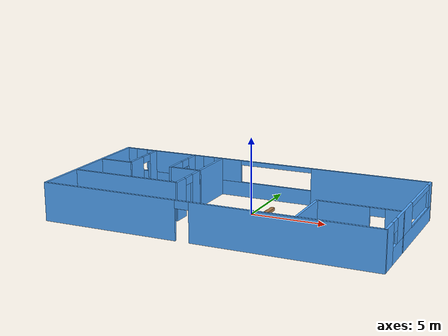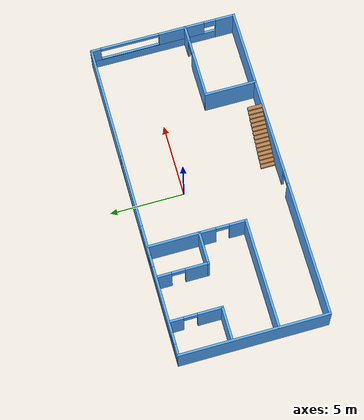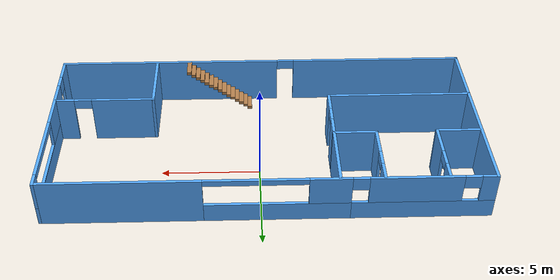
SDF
<?xml version='1.0'?>
<sdf version='1.6'>
  <model name='Building'>
    <pose frame=''>-0.217021 -1.5175 0 0 -0 0</pose>
    <link name='Stairs_0'>
      <visual name='Stairs_0_Visual_0'>
        <pose frame=''>0.664392 -4.38115 0.083333 0 -0 1.5708</pose>
        <geometry>
          <box>
            <size>1 0.233333 0.166667</size>
          </box>
        </geometry>
        <material>
          <script>
            <uri>file://media/materials/scripts/gazebo.material</uri>
            <name>Gazebo/Wood</name>
          </script>
          <ambient>1 1 1 1</ambient>
        </material>
        <meta>
          <layer>0</layer>
        </meta>
      </visual>
      <collision name='Stairs_0_Collision_0'>
        <geometry>
          <box>
            <size>1 0.233333 0.166667</size>
          </box>
        </geometry>
        <pose frame=''>0.664392 -4.38115 0.083333 0 -0 1.5708</pose>
      </collision>
      <visual name='Stairs_0_Visual_1'>
        <pose frame=''>0.897726 -4.38115 0.25 0 -0 1.5708</pose>
        <geometry>
          <box>
            <size>1 0.233333 0.166667</size>
          </box>
        </geometry>
        <material>
          <script>
            <uri>file://media/materials/scripts/gazebo.material</uri>
            <name>Gazebo/Wood</name>
          </script>
          <ambient>1 1 1 1</ambient>
        </material>
        <meta>
          <layer>0</layer>
        </meta>
      </visual>
      <collision name='Stairs_0_Collision_1'>
        <geometry>
          <box>
            <size>1 0.233333 0.166667</size>
          </box>
        </geometry>
        <pose frame=''>0.897726 -4.38115 0.25 0 -0 1.5708</pose>
      </collision>
      <visual name='Stairs_0_Visual_2'>
        <pose frame=''>1.13106 -4.38115 0.416667 0 -0 1.5708</pose>
        <geometry>
          <box>
            <size>1 0.233333 0.166667</size>
          </box>
        </geometry>
        <material>
          <script>
            <uri>file://media/materials/scripts/gazebo.material</uri>
            <name>Gazebo/Wood</name>
          </script>
          <ambient>1 1 1 1</ambient>
        </material>
        <meta>
          <layer>0</layer>
        </meta>
      </visual>
      <collision name='Stairs_0_Collision_2'>
        <geometry>
          <box>
            <size>1 0.233333 0.166667</size>
          </box>
        </geometry>
        <pose frame=''>1.13106 -4.38115 0.416667 0 -0 1.5708</pose>
      </collision>
      <visual name='Stairs_0_Visual_3'>
        <pose frame=''>1.36439 -4.38115 0.583333 0 -0 1.5708</pose>
        <geometry>
          <box>
            <size>1 0.233333 0.166667</size>
          </box>
        </geometry>
        <material>
          <script>
            <uri>file://media/materials/scripts/gazebo.material</uri>
            <name>Gazebo/Wood</name>
          </script>
          <ambient>1 1 1 1</ambient>
        </material>
        <meta>
          <layer>0</layer>
        </meta>
      </visual>
      <collision name='Stairs_0_Collision_3'>
        <geometry>
          <box>
            <size>1 0.233333 0.166667</size>
          </box>
        </geometry>
        <pose frame=''>1.36439 -4.38115 0.583333 0 -0 1.5708</pose>
      </collision>
      <visual name='Stairs_0_Visual_4'>
        <pose frame=''>1.59773 -4.38115 0.75 0 -0 1.5708</pose>
        <geometry>
          <box>
            <size>1 0.233333 0.166667</size>
          </box>
        </geometry>
        <material>
          <script>
            <uri>file://media/materials/scripts/gazebo.material</uri>
            <name>Gazebo/Wood</name>
          </script>
          <ambient>1 1 1 1</ambient>
        </material>
        <meta>
          <layer>0</layer>
        </meta>
      </visual>
      <collision name='Stairs_0_Collision_4'>
        <geometry>
          <box>
            <size>1 0.233333 0.166667</size>
          </box>
        </geometry>
        <pose frame=''>1.59773 -4.38115 0.75 0 -0 1.5708</pose>
      </collision>
      <visual name='Stairs_0_Visual_5'>
        <pose frame=''>1.83106 -4.38115 0.916667 0 -0 1.5708</pose>
        <geometry>
          <box>
            <size>1 0.233333 0.166667</size>
          </box>
        </geometry>
        <material>
          <script>
            <uri>file://media/materials/scripts/gazebo.material</uri>
            <name>Gazebo/Wood</name>
          </script>
          <ambient>1 1 1 1</ambient>
        </material>
        <meta>
          <layer>0</layer>
        </meta>
      </visual>
      <collision name='Stairs_0_Collision_5'>
        <geometry>
          <box>
            <size>1 0.233333 0.166667</size>
          </box>
        </geometry>
        <pose frame=''>1.83106 -4.38115 0.916667 0 -0 1.5708</pose>
      </collision>
      <visual name='Stairs_0_Visual_6'>
        <pose frame=''>2.06439 -4.38115 1.08333 0 -0 1.5708</pose>
        <geometry>
          <box>
            <size>1 0.233333 0.166667</size>
          </box>
        </geometry>
        <material>
          <script>
            <uri>file://media/materials/scripts/gazebo.material</uri>
            <name>Gazebo/Wood</name>
          </script>
          <ambient>1 1 1 1</ambient>
        </material>
        <meta>
          <layer>0</layer>
        </meta>
      </visual>
      <collision name='Stairs_0_Collision_6'>
        <geometry>
          <box>
            <size>1 0.233333 0.166667</size>
          </box>
        </geometry>
        <pose frame=''>2.06439 -4.38115 1.08333 0 -0 1.5708</pose>
      </collision>
      <visual name='Stairs_0_Visual_7'>
        <pose frame=''>2.29773 -4.38115 1.25 0 -0 1.5708</pose>
        <geometry>
          <box>
            <size>1 0.233333 0.166667</size>
          </box>
        </geometry>
        <material>
          <script>
            <uri>file://media/materials/scripts/gazebo.material</uri>
            <name>Gazebo/Wood</name>
          </script>
          <ambient>1 1 1 1</ambient>
        </material>
        <meta>
          <layer>0</layer>
        </meta>
      </visual>
      <collision name='Stairs_0_Collision_7'>
        <geometry>
          <box>
            <size>1 0.233333 0.166667</size>
          </box>
        </geometry>
        <pose frame=''>2.29773 -4.38115 1.25 0 -0 1.5708</pose>
      </collision>
      <visual name='Stairs_0_Visual_8'>
        <pose frame=''>2.53106 -4.38115 1.41667 0 -0 1.5708</pose>
        <geometry>
          <box>
            <size>1 0.233333 0.166667</size>
          </box>
        </geometry>
        <material>
          <script>
            <uri>file://media/materials/scripts/gazebo.material</uri>
            <name>Gazebo/Wood</name>
          </script>
          <ambient>1 1 1 1</ambient>
        </material>
        <meta>
          <layer>0</layer>
        </meta>
      </visual>
      <collision name='Stairs_0_Collision_8'>
        <geometry>
          <box>
            <size>1 0.233333 0.166667</size>
          </box>
        </geometry>
        <pose frame=''>2.53106 -4.38115 1.41667 0 -0 1.5708</pose>
      </collision>
      <visual name='Stairs_0_Visual_9'>
        <pose frame=''>2.76439 -4.38115 1.58333 0 -0 1.5708</pose>
        <geometry>
          <box>
            <size>1 0.233333 0.166667</size>
          </box>
        </geometry>
        <material>
          <script>
            <uri>file://media/materials/scripts/gazebo.material</uri>
            <name>Gazebo/Wood</name>
          </script>
          <ambient>1 1 1 1</ambient>
        </material>
        <meta>
          <layer>0</layer>
        </meta>
      </visual>
      <collision name='Stairs_0_Collision_9'>
        <geometry>
          <box>
            <size>1 0.233333 0.166667</size>
          </box>
        </geometry>
        <pose frame=''>2.76439 -4.38115 1.58333 0 -0 1.5708</pose>
      </collision>
      <visual name='Stairs_0_Visual_10'>
        <pose frame=''>2.99773 -4.38115 1.75 0 -0 1.5708</pose>
        <geometry>
          <box>
            <size>1 0.233333 0.166667</size>
          </box>
        </geometry>
        <material>
          <script>
            <uri>file://media/materials/scripts/gazebo.material</uri>
            <name>Gazebo/Wood</name>
          </script>
          <ambient>1 1 1 1</ambient>
        </material>
        <meta>
          <layer>0</layer>
        </meta>
      </visual>
      <collision name='Stairs_0_Collision_10'>
        <geometry>
          <box>
            <size>1 0.233333 0.166667</size>
          </box>
        </geometry>
        <pose frame=''>2.99773 -4.38115 1.75 0 -0 1.5708</pose>
      </collision>
      <visual name='Stairs_0_Visual_11'>
        <pose frame=''>3.23106 -4.38115 1.91667 0 -0 1.5708</pose>
        <geometry>
          <box>
            <size>1 0.233333 0.166667</size>
          </box>
        </geometry>
        <material>
          <script>
            <uri>file://media/materials/scripts/gazebo.material</uri>
            <name>Gazebo/Wood</name>
          </script>
          <ambient>1 1 1 1</ambient>
        </material>
        <meta>
          <layer>0</layer>
        </meta>
      </visual>
      <collision name='Stairs_0_Collision_11'>
        <geometry>
          <box>
            <size>1 0.233333 0.166667</size>
          </box>
        </geometry>
        <pose frame=''>3.23106 -4.38115 1.91667 0 -0 1.5708</pose>
      </collision>
      <visual name='Stairs_0_Visual_12'>
        <pose frame=''>3.46439 -4.38115 2.08333 0 -0 1.5708</pose>
        <geometry>
          <box>
            <size>1 0.233333 0.166667</size>
          </box>
        </geometry>
        <material>
          <script>
            <uri>file://media/materials/scripts/gazebo.material</uri>
            <name>Gazebo/Wood</name>
          </script>
          <ambient>1 1 1 1</ambient>
        </material>
        <meta>
          <layer>0</layer>
        </meta>
      </visual>
      <collision name='Stairs_0_Collision_12'>
        <geometry>
          <box>
            <size>1 0.233333 0.166667</size>
          </box>
        </geometry>
        <pose frame=''>3.46439 -4.38115 2.08333 0 -0 1.5708</pose>
      </collision>
      <visual name='Stairs_0_Visual_13'>
        <pose frame=''>3.69773 -4.38115 2.25 0 -0 1.5708</pose>
        <geometry>
          <box>
            <size>1 0.233333 0.166667</size>
          </box>
        </geometry>
        <material>
          <script>
            <uri>file://media/materials/scripts/gazebo.material</uri>
            <name>Gazebo/Wood</name>
          </script>
          <ambient>1 1 1 1</ambient>
        </material>
        <meta>
          <layer>0</layer>
        </meta>
      </visual>
      <collision name='Stairs_0_Collision_13'>
        <geometry>
          <box>
            <size>1 0.233333 0.166667</size>
          </box>
        </geometry>
        <pose frame=''>3.69773 -4.38115 2.25 0 -0 1.5708</pose>
      </collision>
      <visual name='Stairs_0_Visual_14'>
        <pose frame=''>3.93106 -4.38115 2.41667 0 -0 1.5708</pose>
        <geometry>
          <box>
            <size>1 0.233333 0.166667</size>
          </box>
        </geometry>
        <material>
          <script>
            <uri>file://media/materials/scripts/gazebo.material</uri>
            <name>Gazebo/Wood</name>
          </script>
          <ambient>1 1 1 1</ambient>
        </material>
        <meta>
          <layer>0</layer>
        </meta>
      </visual>
      <collision name='Stairs_0_Collision_14'>
        <geometry>
          <box>
            <size>1 0.233333 0.166667</size>
          </box>
        </geometry>
        <pose frame=''>3.93106 -4.38115 2.41667 0 -0 1.5708</pose>
      </collision>
    </link>
    <link name='Wall_10'>
      <pose frame=''>-3.45255 1.62717 0 0 -0 1.5708</pose>
      <visual name='Wall_10_Visual_0'>
        <pose frame=''>-2.71124 0 1.25 0 -0 0</pose>
        <geometry>
          <box>
            <size>1.17752 0.15 2.5</size>
          </box>
        </geometry>
        <material>
          <script>
            <uri>file://media/materials/scripts/gazebo.material</uri>
            <name>Gazebo/Grey</name>
          </script>
          <ambient>0.333333 0.666667 1 1</ambient>
        </material>
        <meta>
          <layer>0</layer>
        </meta>
      </visual>
      <collision name='Wall_10_Collision_0'>
        <geometry>
          <box>
            <size>1.17752 0.15 2.5</size>
          </box>
        </geometry>
        <pose frame=''>-2.71124 0 1.25 0 -0 0</pose>
      </collision>
      <visual name='Wall_10_Visual_1'>
        <pose frame=''>1.03876 0 1.25 0 -0 0</pose>
        <geometry>
          <box>
            <size>4.52248 0.15 2.5</size>
          </box>
        </geometry>
        <material>
          <script>
            <uri>file://media/materials/scripts/gazebo.material</uri>
            <name>Gazebo/Grey</name>
          </script>
          <ambient>0.333333 0.666667 1 1</ambient>
        </material>
        <meta>
          <layer>0</layer>
        </meta>
      </visual>
      <collision name='Wall_10_Collision_1'>
        <geometry>
          <box>
            <size>4.52248 0.15 2.5</size>
          </box>
        </geometry>
        <pose frame=''>1.03876 0 1.25 0 -0 0</pose>
      </collision>
      <visual name='Wall_10_Visual_2'>
        <pose frame=''>-1.67248 0 2.25 0 -0 0</pose>
        <geometry>
          <box>
            <size>0.9 0.15 0.5</size>
          </box>
        </geometry>
        <material>
          <script>
            <uri>file://media/materials/scripts/gazebo.material</uri>
            <name>Gazebo/Grey</name>
          </script>
          <ambient>0.333333 0.666667 1 1</ambient>
        </material>
        <meta>
          <layer>0</layer>
        </meta>
      </visual>
      <collision name='Wall_10_Collision_2'>
        <geometry>
          <box>
            <size>0.9 0.15 0.5</size>
          </box>
        </geometry>
        <pose frame=''>-1.67248 0 2.25 0 -0 0</pose>
      </collision>
    </link>
    <link name='Wall_12'>
      <pose frame=''>-8.58176 3.12092 0 0 0 -1.5708</pose>
      <visual name='Wall_12_Visual_0'>
        <pose frame=''>-1.2991 0 1.25 0 -0 0</pose>
        <geometry>
          <box>
            <size>0.90181 0.15 2.5</size>
          </box>
        </geometry>
        <material>
          <script>
            <uri>file://media/materials/scripts/gazebo.material</uri>
            <name>Gazebo/Grey</name>
          </script>
          <ambient>0.333333 0.666667 1 1</ambient>
        </material>
        <meta>
          <layer>0</layer>
        </meta>
      </visual>
      <collision name='Wall_12_Collision_0'>
        <geometry>
          <box>
            <size>0.90181 0.15 2.5</size>
          </box>
        </geometry>
        <pose frame=''>-1.2991 0 1.25 0 -0 0</pose>
      </collision>
      <visual name='Wall_12_Visual_1'>
        <pose frame=''>0.900905 0 1.25 0 -0 0</pose>
        <geometry>
          <box>
            <size>1.69819 0.15 2.5</size>
          </box>
        </geometry>
        <material>
          <script>
            <uri>file://media/materials/scripts/gazebo.material</uri>
            <name>Gazebo/Grey</name>
          </script>
          <ambient>0.333333 0.666667 1 1</ambient>
        </material>
        <meta>
          <layer>0</layer>
        </meta>
      </visual>
      <collision name='Wall_12_Collision_1'>
        <geometry>
          <box>
            <size>1.69819 0.15 2.5</size>
          </box>
        </geometry>
        <pose frame=''>0.900905 0 1.25 0 -0 0</pose>
      </collision>
      <visual name='Wall_12_Visual_2'>
        <pose frame=''>-0.39819 0 2.25 0 -0 0</pose>
        <geometry>
          <box>
            <size>0.9 0.15 0.5</size>
          </box>
        </geometry>
        <material>
          <script>
            <uri>file://media/materials/scripts/gazebo.material</uri>
            <name>Gazebo/Grey</name>
          </script>
          <ambient>0.333333 0.666667 1 1</ambient>
        </material>
        <meta>
          <layer>0</layer>
        </meta>
      </visual>
      <collision name='Wall_12_Collision_2'>
        <geometry>
          <box>
            <size>0.9 0.15 0.5</size>
          </box>
        </geometry>
        <pose frame=''>-0.39819 0 2.25 0 -0 0</pose>
      </collision>
    </link>
    <link name='Wall_13'>
      <collision name='Wall_13_Collision'>
        <geometry>
          <box>
            <size>2.25 0.15 2.5</size>
          </box>
        </geometry>
        <pose frame=''>0 0 1.25 0 -0 0</pose>
      </collision>
      <visual name='Wall_13_Visual'>
        <pose frame=''>0 0 1.25 0 -0 0</pose>
        <geometry>
          <box>
            <size>2.25 0.15 2.5</size>
          </box>
        </geometry>
        <material>
          <script>
            <uri>file://media/materials/scripts/gazebo.material</uri>
            <name>Gazebo/Grey</name>
          </script>
          <ambient>0.333333 0.666667 1 1</ambient>
        </material>
        <meta>
          <layer>0</layer>
        </meta>
      </visual>
      <pose frame=''>-9.63176 1.44592 0 0 -0 3.14159</pose>
    </link>
    <link name='Wall_19'>
      <collision name='Wall_19_Collision'>
        <geometry>
          <box>
            <size>2.25 0.15 2.5</size>
          </box>
        </geometry>
        <pose frame=''>0 0 1.25 0 -0 0</pose>
      </collision>
      <visual name='Wall_19_Visual'>
        <pose frame=''>0 0 1.25 0 -0 0</pose>
        <geometry>
          <box>
            <size>2.25 0.15 2.5</size>
          </box>
        </geometry>
        <material>
          <script>
            <uri>file://media/materials/scripts/gazebo.material</uri>
            <name>Gazebo/Grey</name>
          </script>
          <ambient>0.333333 0.666667 1 1</ambient>
        </material>
        <meta>
          <layer>0</layer>
        </meta>
      </visual>
      <pose frame=''>-4.49792 1.4975 0 0 -0 3.14159</pose>
    </link>
    <link name='Wall_2'>
      <collision name='Wall_2_Collision'>
        <geometry>
          <box>
            <size>10 0.15 2.5</size>
          </box>
        </geometry>
        <pose frame=''>0 0 1.25 0 -0 0</pose>
      </collision>
      <visual name='Wall_2_Visual'>
        <pose frame=''>0 0 1.25 0 -0 0</pose>
        <geometry>
          <box>
            <size>10 0.15 2.5</size>
          </box>
        </geometry>
        <material>
          <script>
            <uri>file://media/materials/scripts/gazebo.material</uri>
            <name>Gazebo/Grey</name>
          </script>
          <ambient>0.333333 0.666667 1 1</ambient>
        </material>
        <meta>
          <layer>0</layer>
        </meta>
      </visual>
      <pose frame=''>-10.8026 0 0 0 0 -1.5708</pose>
    </link>
    <link name='Wall_20'>
      <pose frame=''>-5.54792 3.1725 0 0 -0 1.5708</pose>
      <visual name='Wall_20_Visual_0'>
        <pose frame=''>-0.953293 0 1.25 0 -0 0</pose>
        <geometry>
          <box>
            <size>1.59342 0.15 2.5</size>
          </box>
        </geometry>
        <material>
          <script>
            <uri>file://media/materials/scripts/gazebo.material</uri>
            <name>Gazebo/Grey</name>
          </script>
          <ambient>0.333333 0.666667 1 1</ambient>
        </material>
        <meta>
          <layer>0</layer>
        </meta>
      </visual>
      <collision name='Wall_20_Collision_0'>
        <geometry>
          <box>
            <size>1.59342 0.15 2.5</size>
          </box>
        </geometry>
        <pose frame=''>-0.953293 0 1.25 0 -0 0</pose>
      </collision>
      <visual name='Wall_20_Visual_1'>
        <pose frame=''>1.24671 0 1.25 0 -0 0</pose>
        <geometry>
          <box>
            <size>1.00659 0.15 2.5</size>
          </box>
        </geometry>
        <material>
          <script>
            <uri>file://media/materials/scripts/gazebo.material</uri>
            <name>Gazebo/Grey</name>
          </script>
          <ambient>0.333333 0.666667 1 1</ambient>
        </material>
        <meta>
          <layer>0</layer>
        </meta>
      </visual>
      <collision name='Wall_20_Collision_1'>
        <geometry>
          <box>
            <size>1.00659 0.15 2.5</size>
          </box>
        </geometry>
        <pose frame=''>1.24671 0 1.25 0 -0 0</pose>
      </collision>
      <visual name='Wall_20_Visual_2'>
        <pose frame=''>0.293415 0 2.25 0 -0 0</pose>
        <geometry>
          <box>
            <size>0.9 0.15 0.5</size>
          </box>
        </geometry>
        <material>
          <script>
            <uri>file://media/materials/scripts/gazebo.material</uri>
            <name>Gazebo/Grey</name>
          </script>
          <ambient>0.333333 0.666667 1 1</ambient>
        </material>
        <meta>
          <layer>0</layer>
        </meta>
      </visual>
      <collision name='Wall_20_Collision_2'>
        <geometry>
          <box>
            <size>0.9 0.15 0.5</size>
          </box>
        </geometry>
        <pose frame=''>0.293415 0 2.25 0 -0 0</pose>
      </collision>
    </link>
    <link name='Wall_27'>
      <collision name='Wall_27_Collision'>
        <geometry>
          <box>
            <size>3.5 0.15 2.5</size>
          </box>
        </geometry>
        <pose frame=''>0 0 1.25 0 -0 0</pose>
      </collision>
      <visual name='Wall_27_Visual'>
        <pose frame=''>0 0 1.25 0 -0 0</pose>
        <geometry>
          <box>
            <size>3.5 0.15 2.5</size>
          </box>
        </geometry>
        <material>
          <script>
            <uri>file://media/materials/scripts/gazebo.material</uri>
            <name>Gazebo/Grey</name>
          </script>
          <ambient>0.333333 0.666667 1 1</ambient>
        </material>
        <meta>
          <layer>0</layer>
        </meta>
      </visual>
      <pose frame=''>5.70255 -3.21155 0 0 -0 1.5708</pose>
    </link>
    <link name='Wall_28'>
      <pose frame=''>8.25255 -1.53655 0 0 -0 0</pose>
      <visual name='Wall_28_Visual_0'>
        <pose frame=''>-0.990387 0 1.25 0 -0 0</pose>
        <geometry>
          <box>
            <size>3.26923 0.15 2.5</size>
          </box>
        </geometry>
        <material>
          <script>
            <uri>file://media/materials/scripts/gazebo.material</uri>
            <name>Gazebo/Grey</name>
          </script>
          <ambient>0.333333 0.666667 1 1</ambient>
        </material>
        <meta>
          <layer>0</layer>
        </meta>
      </visual>
      <collision name='Wall_28_Collision_0'>
        <geometry>
          <box>
            <size>3.26923 0.15 2.5</size>
          </box>
        </geometry>
        <pose frame=''>-0.990387 0 1.25 0 -0 0</pose>
      </collision>
      <visual name='Wall_28_Visual_1'>
        <pose frame=''>2.08461 0 1.25 0 -0 0</pose>
        <geometry>
          <box>
            <size>1.08077 0.15 2.5</size>
          </box>
        </geometry>
        <material>
          <script>
            <uri>file://media/materials/scripts/gazebo.material</uri>
            <name>Gazebo/Grey</name>
          </script>
          <ambient>0.333333 0.666667 1 1</ambient>
        </material>
        <meta>
          <layer>0</layer>
        </meta>
      </visual>
      <collision name='Wall_28_Collision_1'>
        <geometry>
          <box>
            <size>1.08077 0.15 2.5</size>
          </box>
        </geometry>
        <pose frame=''>2.08461 0 1.25 0 -0 0</pose>
      </collision>
      <visual name='Wall_28_Visual_2'>
        <pose frame=''>1.09423 0 2.25 0 -0 0</pose>
        <geometry>
          <box>
            <size>0.9 0.15 0.5</size>
          </box>
        </geometry>
        <material>
          <script>
            <uri>file://media/materials/scripts/gazebo.material</uri>
            <name>Gazebo/Grey</name>
          </script>
          <ambient>0.333333 0.666667 1 1</ambient>
        </material>
        <meta>
          <layer>0</layer>
        </meta>
      </visual>
      <collision name='Wall_28_Collision_2'>
        <geometry>
          <box>
            <size>0.9 0.15 0.5</size>
          </box>
        </geometry>
        <pose frame=''>1.09423 0 2.25 0 -0 0</pose>
      </collision>
    </link>
    <link name='Wall_3'>
      <pose frame=''>-0.00255 -4.925 0 0 -0 0</pose>
      <visual name='Wall_3_Visual_0'>
        <pose frame=''>-6.32118 0 1.25 0 -0 0</pose>
        <geometry>
          <box>
            <size>9.10765 0.15 2.5</size>
          </box>
        </geometry>
        <material>
          <script>
            <uri>file://media/materials/scripts/gazebo.material</uri>
            <name>Gazebo/Grey</name>
          </script>
          <ambient>0.333333 0.666667 1 1</ambient>
        </material>
        <meta>
          <layer>0</layer>
        </meta>
      </visual>
      <collision name='Wall_3_Collision_0'>
        <geometry>
          <box>
            <size>9.10765 0.15 2.5</size>
          </box>
        </geometry>
        <pose frame=''>-6.32118 0 1.25 0 -0 0</pose>
      </collision>
      <visual name='Wall_3_Visual_1'>
        <pose frame=''>5.00382 0 1.25 0 -0 0</pose>
        <geometry>
          <box>
            <size>11.7424 0.15 2.5</size>
          </box>
        </geometry>
        <material>
          <script>
            <uri>file://media/materials/scripts/gazebo.material</uri>
            <name>Gazebo/Grey</name>
          </script>
          <ambient>0.333333 0.666667 1 1</ambient>
        </material>
        <meta>
          <layer>0</layer>
        </meta>
      </visual>
      <collision name='Wall_3_Collision_1'>
        <geometry>
          <box>
            <size>11.7424 0.15 2.5</size>
          </box>
        </geometry>
        <pose frame=''>5.00382 0 1.25 0 -0 0</pose>
      </collision>
      <visual name='Wall_3_Visual_2'>
        <pose frame=''>-1.31735 0 2.25 0 -0 0</pose>
        <geometry>
          <box>
            <size>0.9 0.15 0.5</size>
          </box>
        </geometry>
        <material>
          <script>
            <uri>file://media/materials/scripts/gazebo.material</uri>
            <name>Gazebo/Grey</name>
          </script>
          <ambient>0.333333 0.666667 1 1</ambient>
        </material>
        <meta>
          <layer>0</layer>
        </meta>
      </visual>
      <collision name='Wall_3_Collision_2'>
        <geometry>
          <box>
            <size>0.9 0.15 0.5</size>
          </box>
        </geometry>
        <pose frame=''>-1.31735 0 2.25 0 -0 0</pose>
      </collision>
    </link>
    <link name='Wall_4'>
      <pose frame=''>10.7974 0 0 0 -0 1.5708</pose>
      <visual name='Wall_4_Visual_0'>
        <pose frame=''>-4.31867 0 1.25 0 -0 0</pose>
        <geometry>
          <box>
            <size>1.36266 0.15 2.5</size>
          </box>
        </geometry>
        <material>
          <script>
            <uri>file://media/materials/scripts/gazebo.material</uri>
            <name>Gazebo/Grey</name>
          </script>
          <ambient>0.333333 0.666667 1 1</ambient>
        </material>
        <meta>
          <layer>0</layer>
        </meta>
      </visual>
      <collision name='Wall_4_Collision_0'>
        <geometry>
          <box>
            <size>1.36266 0.15 2.5</size>
          </box>
        </geometry>
        <pose frame=''>-4.31867 0 1.25 0 -0 0</pose>
      </collision>
      <visual name='Wall_4_Visual_1'>
        <pose frame=''>0.68133 0 0.5 0 -0 0</pose>
        <geometry>
          <box>
            <size>8.63734 0.15 1</size>
          </box>
        </geometry>
        <material>
          <script>
            <uri>file://media/materials/scripts/gazebo.material</uri>
            <name>Gazebo/Grey</name>
          </script>
          <ambient>0.333333 0.666667 1 1</ambient>
        </material>
        <meta>
          <layer>0</layer>
        </meta>
      </visual>
      <collision name='Wall_4_Collision_1'>
        <geometry>
          <box>
            <size>8.63734 0.15 1</size>
          </box>
        </geometry>
        <pose frame=''>0.68133 0 0.5 0 -0 0</pose>
      </collision>
      <visual name='Wall_4_Visual_2'>
        <pose frame=''>-1.27092 0 1.75 0 -0 0</pose>
        <geometry>
          <box>
            <size>3.13284 0.15 1.5</size>
          </box>
        </geometry>
        <material>
          <script>
            <uri>file://media/materials/scripts/gazebo.material</uri>
            <name>Gazebo/Grey</name>
          </script>
          <ambient>0.333333 0.666667 1 1</ambient>
        </material>
        <meta>
          <layer>0</layer>
        </meta>
      </visual>
      <collision name='Wall_4_Collision_2'>
        <geometry>
          <box>
            <size>3.13284 0.15 1.5</size>
          </box>
        </geometry>
        <pose frame=''>-1.27092 0 1.75 0 -0 0</pose>
      </collision>
      <visual name='Wall_4_Visual_3'>
        <pose frame=''>4.64775 0 1.75 0 -0 0</pose>
        <geometry>
          <box>
            <size>0.704498 0.15 1.5</size>
          </box>
        </geometry>
        <material>
          <script>
            <uri>file://media/materials/scripts/gazebo.material</uri>
            <name>Gazebo/Grey</name>
          </script>
          <ambient>0.333333 0.666667 1 1</ambient>
        </material>
        <meta>
          <layer>0</layer>
        </meta>
      </visual>
      <collision name='Wall_4_Collision_3'>
        <geometry>
          <box>
            <size>0.704498 0.15 1.5</size>
          </box>
        </geometry>
        <pose frame=''>4.64775 0 1.75 0 -0 0</pose>
      </collision>
      <visual name='Wall_4_Visual_4'>
        <pose frame=''>2.2955 0 1 0 -0 0</pose>
        <geometry>
          <box>
            <size>4 0.15 0.1</size>
          </box>
        </geometry>
        <material>
          <script>
            <uri>file://media/materials/scripts/gazebo.material</uri>
            <name>Gazebo/Grey</name>
          </script>
          <ambient>0.333333 0.666667 1 1</ambient>
        </material>
        <meta>
          <layer>0</layer>
        </meta>
      </visual>
      <collision name='Wall_4_Collision_4'>
        <geometry>
          <box>
            <size>4 0.15 0.1</size>
          </box>
        </geometry>
        <pose frame=''>2.2955 0 1 0 -0 0</pose>
      </collision>
      <visual name='Wall_4_Visual_5'>
        <pose frame=''>-3.23734 0 2.15 0 -0 0</pose>
        <geometry>
          <box>
            <size>0.8 0.15 0.7</size>
          </box>
        </geometry>
        <material>
          <script>
            <uri>file://media/materials/scripts/gazebo.material</uri>
            <name>Gazebo/Grey</name>
          </script>
          <ambient>0.333333 0.666667 1 1</ambient>
        </material>
        <meta>
          <layer>0</layer>
        </meta>
      </visual>
      <collision name='Wall_4_Collision_5'>
        <geometry>
          <box>
            <size>0.8 0.15 0.7</size>
          </box>
        </geometry>
        <pose frame=''>-3.23734 0 2.15 0 -0 0</pose>
      </collision>
      <visual name='Wall_4_Visual_6'>
        <pose frame=''>2.2955 0 2.35 0 -0 0</pose>
        <geometry>
          <box>
            <size>4 0.15 0.3</size>
          </box>
        </geometry>
        <material>
          <script>
            <uri>file://media/materials/scripts/gazebo.material</uri>
            <name>Gazebo/Grey</name>
          </script>
          <ambient>0.333333 0.666667 1 1</ambient>
        </material>
        <meta>
          <layer>0</layer>
        </meta>
      </visual>
      <collision name='Wall_4_Collision_6'>
        <geometry>
          <box>
            <size>4 0.15 0.3</size>
          </box>
        </geometry>
        <pose frame=''>2.2955 0 2.35 0 -0 0</pose>
      </collision>
    </link>
    <link name='Wall_5'>
      <pose frame=''>-0.00255 4.925 0 0 -0 3.14159</pose>
      <visual name='Wall_5_Visual_0'>
        <pose frame=''>-6.93323 0 1.25 0 -0 0</pose>
        <geometry>
          <box>
            <size>7.88354 0.15 2.5</size>
          </box>
        </geometry>
        <material>
          <script>
            <uri>file://media/materials/scripts/gazebo.material</uri>
            <name>Gazebo/Grey</name>
          </script>
          <ambient>0.333333 0.666667 1 1</ambient>
        </material>
        <meta>
          <layer>0</layer>
        </meta>
      </visual>
      <collision name='Wall_5_Collision_0'>
        <geometry>
          <box>
            <size>7.88354 0.15 2.5</size>
          </box>
        </geometry>
        <pose frame=''>-6.93323 0 1.25 0 -0 0</pose>
      </collision>
      <visual name='Wall_5_Visual_1'>
        <pose frame=''>0.519056 0 0.5 0 -0 0</pose>
        <geometry>
          <box>
            <size>7.02104 0.15 1</size>
          </box>
        </geometry>
        <material>
          <script>
            <uri>file://media/materials/scripts/gazebo.material</uri>
            <name>Gazebo/Grey</name>
          </script>
          <ambient>0.333333 0.666667 1 1</ambient>
        </material>
        <meta>
          <layer>0</layer>
        </meta>
      </visual>
      <collision name='Wall_5_Collision_1'>
        <geometry>
          <box>
            <size>7.02104 0.15 1</size>
          </box>
        </geometry>
        <pose frame=''>0.519056 0 0.5 0 -0 0</pose>
      </collision>
      <visual name='Wall_5_Visual_2'>
        <pose frame=''>7.45229 0 0.5 0 -0 0</pose>
        <geometry>
          <box>
            <size>6.84543 0.15 1</size>
          </box>
        </geometry>
        <material>
          <script>
            <uri>file://media/materials/scripts/gazebo.material</uri>
            <name>Gazebo/Grey</name>
          </script>
          <ambient>0.333333 0.666667 1 1</ambient>
        </material>
        <meta>
          <layer>0</layer>
        </meta>
      </visual>
      <collision name='Wall_5_Collision_2'>
        <geometry>
          <box>
            <size>6.84543 0.15 1</size>
          </box>
        </geometry>
        <pose frame=''>7.45229 0 0.5 0 -0 0</pose>
      </collision>
      <visual name='Wall_5_Visual_3'>
        <pose frame=''>7.04969 0 1.75 0 -0 0</pose>
        <geometry>
          <box>
            <size>4.44024 0.15 1.5</size>
          </box>
        </geometry>
        <material>
          <script>
            <uri>file://media/materials/scripts/gazebo.material</uri>
            <name>Gazebo/Grey</name>
          </script>
          <ambient>0.333333 0.666667 1 1</ambient>
        </material>
        <meta>
          <layer>0</layer>
        </meta>
      </visual>
      <collision name='Wall_5_Collision_3'>
        <geometry>
          <box>
            <size>4.44024 0.15 1.5</size>
          </box>
        </geometry>
        <pose frame=''>7.04969 0 1.75 0 -0 0</pose>
      </collision>
      <visual name='Wall_5_Visual_4'>
        <pose frame=''>10.4724 0 1.75 0 -0 0</pose>
        <geometry>
          <box>
            <size>0.805186 0.15 1.5</size>
          </box>
        </geometry>
        <material>
          <script>
            <uri>file://media/materials/scripts/gazebo.material</uri>
            <name>Gazebo/Grey</name>
          </script>
          <ambient>0.333333 0.666667 1 1</ambient>
        </material>
        <meta>
          <layer>0</layer>
        </meta>
      </visual>
      <collision name='Wall_5_Collision_4'>
        <geometry>
          <box>
            <size>0.805186 0.15 1.5</size>
          </box>
        </geometry>
        <pose frame=''>10.4724 0 1.75 0 -0 0</pose>
      </collision>
      <visual name='Wall_5_Visual_5'>
        <pose frame=''>3.01906 0 1.75 0 -0 0</pose>
        <geometry>
          <box>
            <size>2.02104 0.15 1.5</size>
          </box>
        </geometry>
        <material>
          <script>
            <uri>file://media/materials/scripts/gazebo.material</uri>
            <name>Gazebo/Grey</name>
          </script>
          <ambient>0.333333 0.666667 1 1</ambient>
        </material>
        <meta>
          <layer>0</layer>
        </meta>
      </visual>
      <collision name='Wall_5_Collision_5'>
        <geometry>
          <box>
            <size>2.02104 0.15 1.5</size>
          </box>
        </geometry>
        <pose frame=''>3.01906 0 1.75 0 -0 0</pose>
      </collision>
      <visual name='Wall_5_Visual_6'>
        <pose frame=''>3.01906 0 1.75 0 -0 0</pose>
        <geometry>
          <box>
            <size>2.02104 0.15 1.5</size>
          </box>
        </geometry>
        <material>
          <script>
            <uri>file://media/materials/scripts/gazebo.material</uri>
            <name>Gazebo/Grey</name>
          </script>
          <ambient>0.333333 0.666667 1 1</ambient>
        </material>
        <meta>
          <layer>0</layer>
        </meta>
      </visual>
      <collision name='Wall_5_Collision_6'>
        <geometry>
          <box>
            <size>2.02104 0.15 1.5</size>
          </box>
        </geometry>
        <pose frame=''>3.01906 0 1.75 0 -0 0</pose>
      </collision>
      <visual name='Wall_5_Visual_7'>
        <pose frame=''>9.66981 0 2.15 0 -0 0</pose>
        <geometry>
          <box>
            <size>0.8 0.15 0.7</size>
          </box>
        </geometry>
        <material>
          <script>
            <uri>file://media/materials/scripts/gazebo.material</uri>
            <name>Gazebo/Grey</name>
          </script>
          <ambient>0.333333 0.666667 1 1</ambient>
        </material>
        <meta>
          <layer>0</layer>
        </meta>
      </visual>
      <collision name='Wall_5_Collision_7'>
        <geometry>
          <box>
            <size>0.8 0.15 0.7</size>
          </box>
        </geometry>
        <pose frame=''>9.66981 0 2.15 0 -0 0</pose>
      </collision>
      <visual name='Wall_5_Visual_8'>
        <pose frame=''>4.42957 0 2.15 0 -0 0</pose>
        <geometry>
          <box>
            <size>0.8 0.15 0.7</size>
          </box>
        </geometry>
        <material>
          <script>
            <uri>file://media/materials/scripts/gazebo.material</uri>
            <name>Gazebo/Grey</name>
          </script>
          <ambient>0.333333 0.666667 1 1</ambient>
        </material>
        <meta>
          <layer>0</layer>
        </meta>
      </visual>
      <collision name='Wall_5_Collision_8'>
        <geometry>
          <box>
            <size>0.8 0.15 0.7</size>
          </box>
        </geometry>
        <pose frame=''>4.42957 0 2.15 0 -0 0</pose>
      </collision>
      <visual name='Wall_5_Visual_9'>
        <pose frame=''>4.42957 0 2.15 0 -0 0</pose>
        <geometry>
          <box>
            <size>0.8 0.15 0.7</size>
          </box>
        </geometry>
        <material>
          <script>
            <uri>file://media/materials/scripts/gazebo.material</uri>
            <name>Gazebo/Grey</name>
          </script>
          <ambient>0.333333 0.666667 1 1</ambient>
        </material>
        <meta>
          <layer>0</layer>
        </meta>
      </visual>
      <collision name='Wall_5_Collision_9'>
        <geometry>
          <box>
            <size>0.8 0.15 0.7</size>
          </box>
        </geometry>
        <pose frame=''>4.42957 0 2.15 0 -0 0</pose>
      </collision>
      <visual name='Wall_5_Visual_10'>
        <pose frame=''>-0.491462 0 2.35 0 -0 0</pose>
        <geometry>
          <box>
            <size>5 0.15 0.3</size>
          </box>
        </geometry>
        <material>
          <script>
            <uri>file://media/materials/scripts/gazebo.material</uri>
            <name>Gazebo/Grey</name>
          </script>
          <ambient>0.333333 0.666667 1 1</ambient>
        </material>
        <meta>
          <layer>0</layer>
        </meta>
      </visual>
      <collision name='Wall_5_Collision_10'>
        <geometry>
          <box>
            <size>5 0.15 0.3</size>
          </box>
        </geometry>
        <pose frame=''>-0.491462 0 2.35 0 -0 0</pose>
      </collision>
    </link>
    <link name='Wall_8'>
      <collision name='Wall_8_Collision'>
        <geometry>
          <box>
            <size>7.5 0.15 2.5</size>
          </box>
        </geometry>
        <pose frame=''>0 0 1.25 0 -0 0</pose>
      </collision>
      <visual name='Wall_8_Visual'>
        <pose frame=''>0 0 1.25 0 -0 0</pose>
        <geometry>
          <box>
            <size>7.5 0.15 2.5</size>
          </box>
        </geometry>
        <material>
          <script>
            <uri>file://media/materials/scripts/gazebo.material</uri>
            <name>Gazebo/Grey</name>
          </script>
          <ambient>0.333333 0.666667 1 1</ambient>
        </material>
        <meta>
          <layer>0</layer>
        </meta>
      </visual>
      <pose frame=''>-7.12755 -1.59783 0 0 -0 0</pose>
    </link>
    <static>1</static>
  </model>
</sdf>
